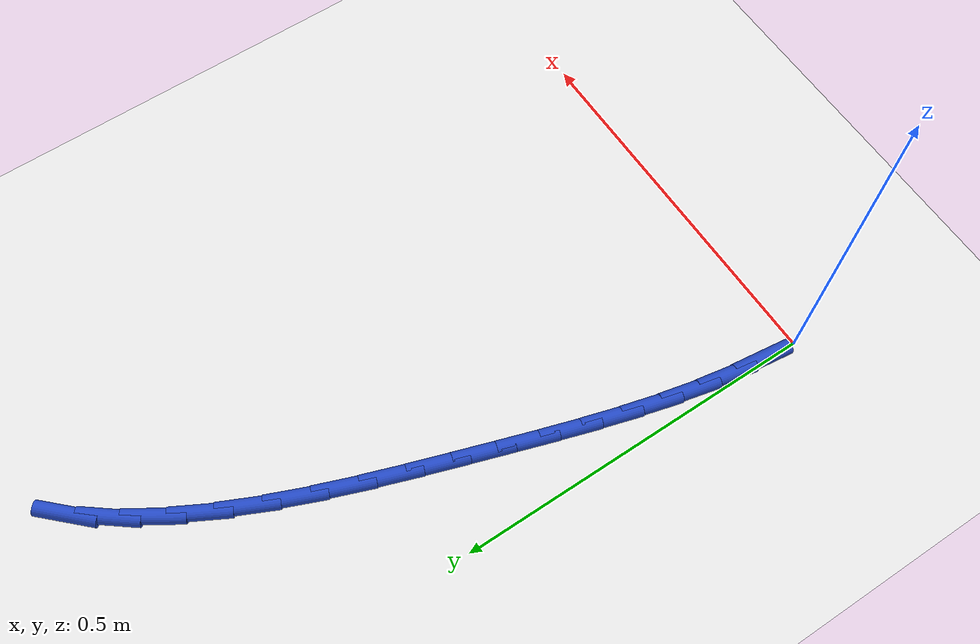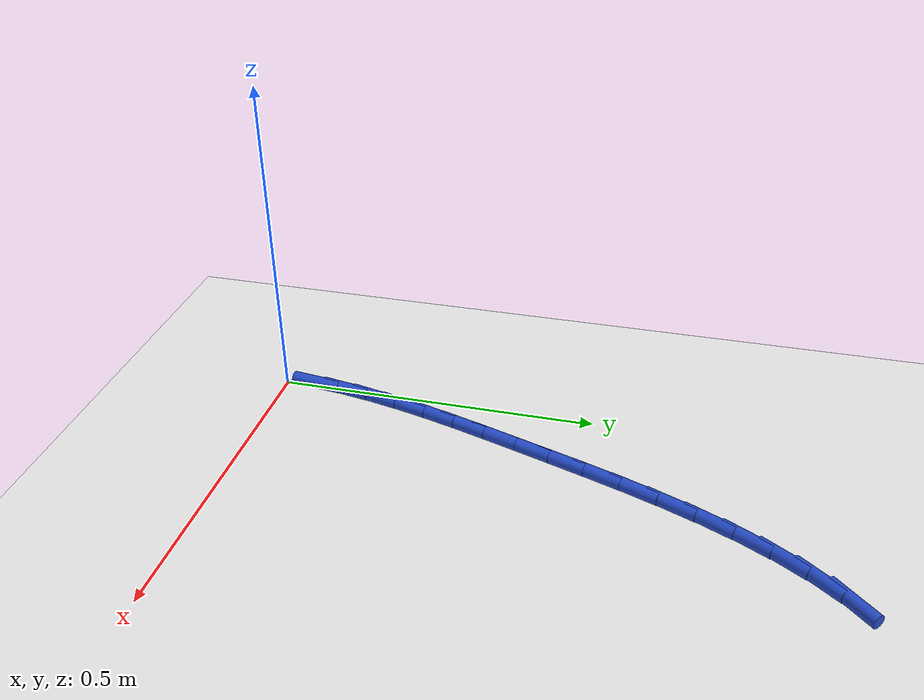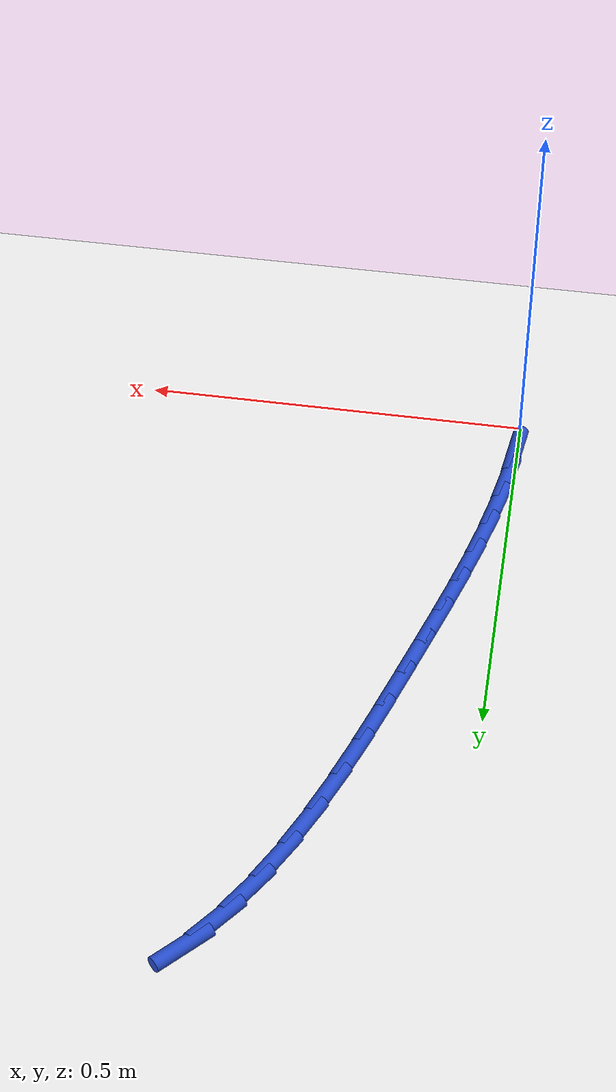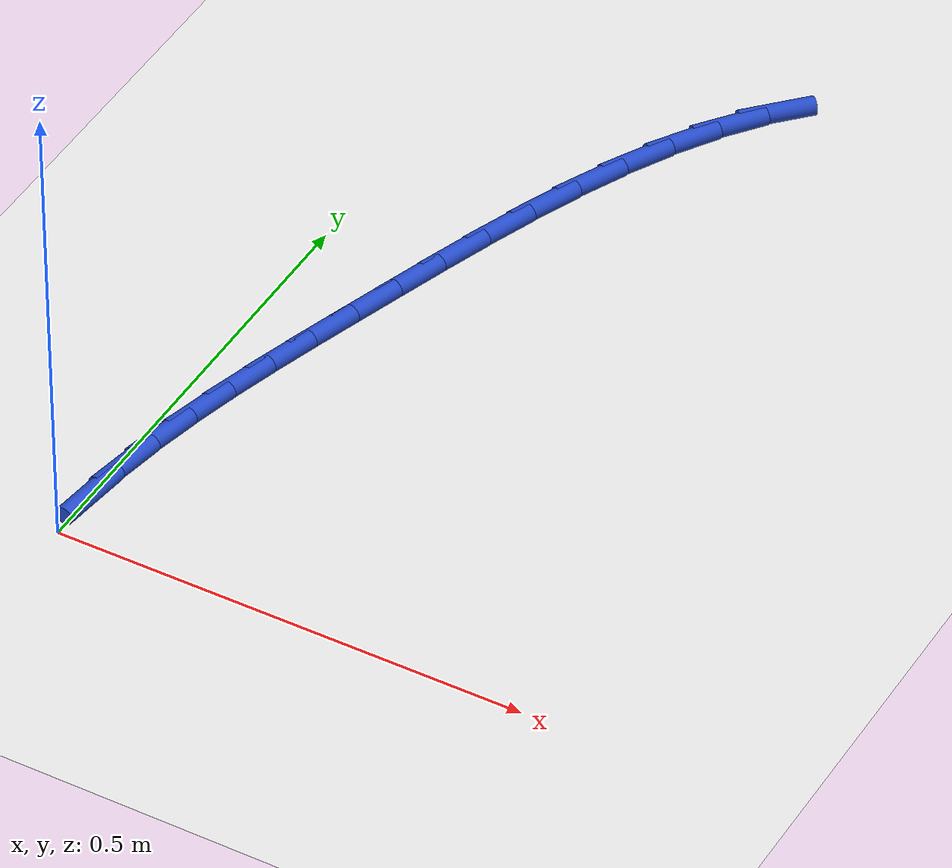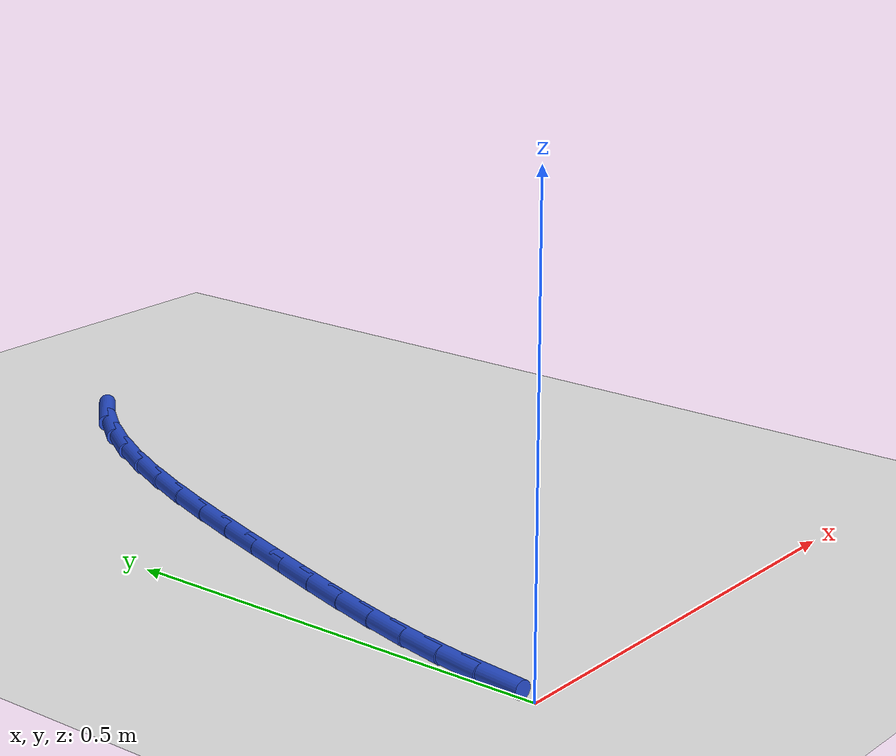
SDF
<sdf version="1.6">
 <world name="default">
  <model name="ground_plane">
   <static>1</static>
   <link name="link">
    <collision name="collision">
     <geometry><plane><normal>0 0 1</normal><size>100 100</size></plane></geometry>
     <surface><friction><ode><mu>100</mu><mu2>50</mu2></ode></friction></surface>
    </collision>
    <visual name="visual">
     <cast_shadows>0</cast_shadows>
     <geometry><plane><normal>0 0 1</normal><size>100 100</size></plane></geometry>
     <material>
      <script><uri>file://media/materials/scripts/gazebo.material</uri><name>Gazebo/WhiteGlow</name></script>
     </material>
    </visual>
   </link>
  </model>
  <model name="line">
   <link name="link_1">
    <pose>0.0033895039714401565 0.05243627973682007 0.01 0 1.57 1.4459991771651994</pose>
    <collision name="collision">
     <geometry><cylinder><radius>0.01</radius><length>0.08</length></cylinder></geometry>
    </collision>
    <visual name="visual">
     <material>
      <script><name>Gazebo/Blue</name><uri>file://media/materials/scripts/gazebo.material</uri></script>
     </material>
     <geometry><cylinder><radius>0.01</radius><length>0.08</length></cylinder></geometry>
    </visual>
   </link>
   <link name="link_2">
    <pose>0.009887980325377252 0.10423798213368149 0.01 0 1.57 1.3931108787442419</pose>
    <collision name="collision">
     <geometry><cylinder><radius>0.01</radius><length>0.08</length></cylinder></geometry>
    </collision>
    <visual name="visual">
     <material>
      <script><name>Gazebo/Blue</name><uri>file://media/materials/scripts/gazebo.material</uri></script>
     </material>
     <geometry><cylinder><radius>0.01</radius><length>0.08</length></cylinder></geometry>
    </visual>
   </link>
   <link name="link_3">
    <pose>0.019124163517237443 0.15567030890530242 0.01 0 1.57 1.3484846407170896</pose>
    <collision name="collision">
     <geometry><cylinder><radius>0.01</radius><length>0.08</length></cylinder></geometry>
    </collision>
    <visual name="visual">
     <material>
      <script><name>Gazebo/Blue</name><uri>file://media/materials/scripts/gazebo.material</uri></script>
     </material>
     <geometry><cylinder><radius>0.01</radius><length>0.08</length></cylinder></geometry>
    </visual>
   </link>
   <link name="link_4">
    <pose>0.03072678800244687 0.20699846176640097 0.01 0 1.57 1.312600667512587</pose>
    <collision name="collision">
     <geometry><cylinder><radius>0.01</radius><length>0.08</length></cylinder></geometry>
    </collision>
    <visual name="visual">
     <material>
      <script><name>Gazebo/Blue</name><uri>file://media/materials/scripts/gazebo.material</uri></script>
     </material>
     <geometry><cylinder><radius>0.01</radius><length>0.08</length></cylinder></geometry>
    </visual>
   </link>
   <link name="link_5">
    <pose>0.04432458823643169 0.2584876424316954 0.01 0 1.57 1.2855876910878032</pose>
    <collision name="collision">
     <geometry><cylinder><radius>0.01</radius><length>0.08</length></cylinder></geometry>
    </collision>
    <visual name="visual">
     <material>
      <script><name>Gazebo/Blue</name><uri>file://media/materials/scripts/gazebo.material</uri></script>
     </material>
     <geometry><cylinder><radius>0.01</radius><length>0.08</length></cylinder></geometry>
    </visual>
   </link>
   <link name="link_6">
    <pose>0.05954629867461807 0.31040305261590395 0.01 0 1.57 1.2673103484893582</pose>
    <collision name="collision">
     <geometry><cylinder><radius>0.01</radius><length>0.08</length></cylinder></geometry>
    </collision>
    <visual name="visual">
     <material>
      <script><name>Gazebo/Blue</name><uri>file://media/materials/scripts/gazebo.material</uri></script>
     </material>
     <geometry><cylinder><radius>0.01</radius><length>0.08</length></cylinder></geometry>
    </visual>
   </link>
   <link name="link_7">
    <pose>0.07602065377243208 0.36300989403374456 0.01 0 1.57 1.2574494163025367</pose>
    <collision name="collision">
     <geometry><cylinder><radius>0.01</radius><length>0.08</length></cylinder></geometry>
    </collision>
    <visual name="visual">
     <material>
      <script><name>Gazebo/Blue</name><uri>file://media/materials/scripts/gazebo.material</uri></script>
     </material>
     <geometry><cylinder><radius>0.01</radius><length>0.08</length></cylinder></geometry>
    </visual>
   </link>
   <link name="link_8">
    <pose>0.09337638798529999 0.41657336839993564 0.01 0 1.57 1.2546863573437124</pose>
    <collision name="collision">
     <geometry><cylinder><radius>0.01</radius><length>0.08</length></cylinder></geometry>
    </collision>
    <visual name="visual">
     <material>
      <script><name>Gazebo/Blue</name><uri>file://media/materials/scripts/gazebo.material</uri></script>
     </material>
     <geometry><cylinder><radius>0.01</radius><length>0.08</length></cylinder></geometry>
    </visual>
   </link>
   <link name="link_9">
    <pose>0.11127840652390608 0.4713065950076575 0.01 0 1.57 1.2490773098429868</pose>
    <collision name="collision">
     <geometry><cylinder><radius>0.01</radius><length>0.08</length></cylinder></geometry>
    </collision>
    <visual name="visual">
     <material>
      <script><name>Gazebo/Blue</name><uri>file://media/materials/scripts/gazebo.material</uri></script>
     </material>
     <geometry><cylinder><radius>0.01</radius><length>0.08</length></cylinder></geometry>
    </visual>
   </link>
   <link name="link_10">
    <pose>0.12979041490642082 0.5268484589220355 0.01 0 1.57 1.2347392475835262</pose>
    <collision name="collision">
     <geometry><cylinder><radius>0.01</radius><length>0.08</length></cylinder></geometry>
    </collision>
    <visual name="visual">
     <material>
      <script><name>Gazebo/Blue</name><uri>file://media/materials/scripts/gazebo.material</uri></script>
     </material>
     <geometry><cylinder><radius>0.01</radius><length>0.08</length></cylinder></geometry>
    </visual>
   </link>
   <link name="link_11">
    <pose>0.1492234732178619 0.5824816783344917 0.01 0 1.57 1.2113383774653015</pose>
    <collision name="collision">
     <geometry><cylinder><radius>0.01</radius><length>0.08</length></cylinder></geometry>
    </collision>
    <visual name="visual">
     <material>
      <script><name>Gazebo/Blue</name><uri>file://media/materials/scripts/gazebo.material</uri></script>
     </material>
     <geometry><cylinder><radius>0.01</radius><length>0.08</length></cylinder></geometry>
    </visual>
   </link>
   <link name="link_12">
    <pose>0.16989233986011076 0.6374836462145527 0.01 0 1.57 1.1781344930929152</pose>
    <collision name="collision">
     <geometry><cylinder><radius>0.01</radius><length>0.08</length></cylinder></geometry>
    </collision>
    <visual name="visual">
     <material>
      <script><name>Gazebo/Blue</name><uri>file://media/materials/scripts/gazebo.material</uri></script>
     </material>
     <geometry><cylinder><radius>0.01</radius><length>0.08</length></cylinder></geometry>
    </visual>
   </link>
   <link name="link_13">
    <pose>0.1921117732350489 0.6911317555317438 0.01 0 1.57 1.1338827301906536</pose>
    <collision name="collision">
     <geometry><cylinder><radius>0.01</radius><length>0.08</length></cylinder></geometry>
    </collision>
    <visual name="visual">
     <material>
      <script><name>Gazebo/Blue</name><uri>file://media/materials/scripts/gazebo.material</uri></script>
     </material>
     <geometry><cylinder><radius>0.01</radius><length>0.08</length></cylinder></geometry>
    </visual>
   </link>
   <link name="link_14">
    <pose>0.2161965317445578 0.7427033992555916 0.01 0 1.57 1.0768122276982357</pose>
    <collision name="collision">
     <geometry><cylinder><radius>0.01</radius><length>0.08</length></cylinder></geometry>
    </collision>
    <visual name="visual">
     <material>
      <script><name>Gazebo/Blue</name><uri>file://media/materials/scripts/gazebo.material</uri></script>
     </material>
     <geometry><cylinder><radius>0.01</radius><length>0.08</length></cylinder></geometry>
    </visual>
   </link>
   <link name="link_15">
    <pose>0.24246137379051907 0.7914759703556227 0.01 0 1.57 1.0046388859281228</pose>
    <collision name="collision">
     <geometry><cylinder><radius>0.01</radius><length>0.08</length></cylinder></geometry>
    </collision>
    <visual name="visual">
     <material>
      <script><name>Gazebo/Blue</name><uri>file://media/materials/scripts/gazebo.material</uri></script>
     </material>
     <geometry><cylinder><radius>0.01</radius><length>0.08</length></cylinder></geometry>
    </visual>
   </link>
   <link name="link_16">
    <pose>0.2712210577748142 0.8367268618013629 0.01 0 1.57 0.914706429832956</pose>
    <collision name="collision">
     <geometry><cylinder><radius>0.01</radius><length>0.08</length></cylinder></geometry>
    </collision>
    <visual name="visual">
     <material>
      <script><name>Gazebo/Blue</name><uri>file://media/materials/scripts/gazebo.material</uri></script>
     </material>
     <geometry><cylinder><radius>0.01</radius><length>0.08</length></cylinder></geometry>
    </visual>
   </link>
   <link name="link_17">
    <pose>0.3027903420993246 0.8777334665623385 0.01 0 1.57 0.8044260398442064</pose>
    <collision name="collision">
     <geometry><cylinder><radius>0.01</radius><length>0.08</length></cylinder></geometry>
    </collision>
    <visual name="visual">
     <material>
      <script><name>Gazebo/Blue</name><uri>file://media/materials/scripts/gazebo.material</uri></script>
     </material>
     <geometry><cylinder><radius>0.01</radius><length>0.08</length></cylinder></geometry>
    </visual>
   </link>
  </model>
 </world>
</sdf>
